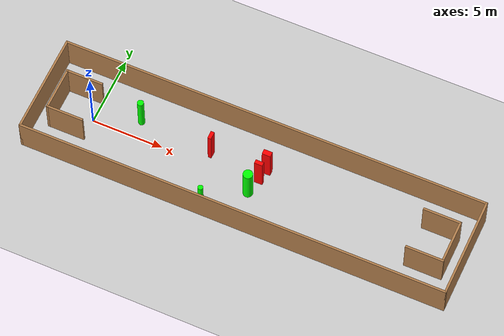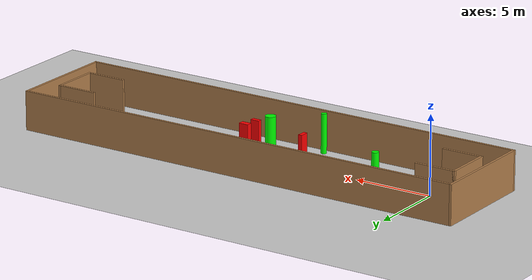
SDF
<sdf version="1.7">
 <world name="default">
  <light name="sun" type="directional">
   <pose>0 0 10 0 -0 0</pose>
   <diffuse>0.8 0.8 0.8 1</diffuse>
   <specular>0.2 0.2 0.2 1</specular>
   <attenuation>
    <range>1000</range>
    <constant>0.9</constant>
    <linear>0.01</linear>
    <quadratic>0.001</quadratic>
   </attenuation>
   <direction>-0.5 0.1 -0.9</direction>
   <spot><inner_angle>0</inner_angle><outer_angle>0</outer_angle><falloff>0</falloff></spot>
  </light>
  <model name="ground_plane">
   <static>1</static>
   <link name="link">
    <collision name="collision">
     <geometry><plane><normal>0 0 1</normal><size>100 100</size></plane></geometry>
     <surface>
      <contact><collide_bitmask>65535</collide_bitmask></contact>
      <friction><ode><mu>100</mu><mu2>50</mu2></ode></friction>
     </surface>
    </collision>
    <visual name="visual">
     <cast_shadows>0</cast_shadows>
     <geometry><plane><normal>0 0 1</normal><size>100 100</size></plane></geometry>
     <material>
      <script><uri>file://media/materials/scripts/gazebo.material</uri><name>Gazebo/Grey</name></script>
     </material>
    </visual>
   </link>
  </model>
  <gravity>0 0 -9.8</gravity>
  <magnetic_field>6e-06 2.3e-05 -4.2e-05</magnetic_field>
  <atmosphere type="adiabatic"/>
  <physics type="ode">
   <max_step_size>0.001</max_step_size>
   <real_time_factor>1</real_time_factor>
   <real_time_update_rate>1000</real_time_update_rate>
  </physics>
  <scene><ambient>0.4 0.4 0.4 1</ambient><background>0.7 0.7 0.7 1</background><shadows>1</shadows></scene>
  <spherical_coordinates>
   <surface_model>EARTH_WGS84</surface_model>
   <latitude_deg>0</latitude_deg>
   <longitude_deg>0</longitude_deg>
   <elevation>0</elevation>
   <heading_deg>0</heading_deg>
  </spherical_coordinates>
  <model name="my_base_walls">
   <link name="Wall_0">
    <collision name="Wall_0_Collision">
     <geometry><box><size>7.15 0.15 2.5</size></box></geometry>
     <pose>0 0 1.25 0 -0 0</pose>
    </collision>
    <visual name="Wall_0_Visual">
     <pose>0 0 1.25 0 -0 0</pose>
     <geometry><box><size>7.15 0.15 2.5</size></box></geometry>
     <material>
      <script><uri>file://media/materials/scripts/gazebo.material</uri><name>Gazebo/Wood</name></script>
      <ambient>1 1 1 1</ambient>
     </material>
     <meta><layer>0</layer></meta>
    </visual>
    <pose>-15 0 0 0 -0 1.5708</pose>
   </link>
   <link name="Wall_10">
    <collision name="Wall_10_Collision">
     <geometry><box><size>2.65 0.15 2.5</size></box></geometry>
     <pose>0 0 1.25 0 -0 0</pose>
    </collision>
    <visual name="Wall_10_Visual">
     <pose>0 0 1.25 0 -0 0</pose>
     <geometry><box><size>2.65 0.15 2.5</size></box></geometry>
     <material>
      <script><uri>file://media/materials/scripts/gazebo.material</uri><name>Gazebo/Wood</name></script>
      <ambient>1 1 1 1</ambient>
     </material>
     <meta><layer>0</layer></meta>
    </visual>
    <pose>-12.75 -1.5 0 0 -0 0</pose>
   </link>
   <link name="Wall_12">
    <collision name="Wall_12_Collision">
     <geometry><box><size>2.65 0.15 2.5</size></box></geometry>
     <pose>0 0 1.25 0 -0 0</pose>
    </collision>
    <visual name="Wall_12_Visual">
     <pose>0 0 1.25 0 -0 0</pose>
     <geometry><box><size>2.65 0.15 2.5</size></box></geometry>
     <material>
      <script><uri>file://media/materials/scripts/gazebo.material</uri><name>Gazebo/Wood</name></script>
      <ambient>1 1 1 1</ambient>
     </material>
     <meta><layer>0</layer></meta>
    </visual>
    <pose>-12.75 1.5 0 0 -0 0</pose>
   </link>
   <link name="Wall_14">
    <collision name="Wall_14_Collision">
     <geometry><box><size>3.15 0.15 2.5</size></box></geometry>
     <pose>0 0 1.25 0 -0 0</pose>
    </collision>
    <visual name="Wall_14_Visual">
     <pose>0 0 1.25 0 -0 0</pose>
     <geometry><box><size>3.15 0.15 2.5</size></box></geometry>
     <material>
      <script><uri>file://media/materials/scripts/gazebo.material</uri><name>Gazebo/Wood</name></script>
      <ambient>1 1 1 1</ambient>
     </material>
     <meta><layer>0</layer></meta>
    </visual>
    <pose>14 0 0 0 -0 -1.5708</pose>
   </link>
   <link name="Wall_15">
    <collision name="Wall_15_Collision">
     <geometry><box><size>2.65 0.15 2.5</size></box></geometry>
     <pose>0 0 1.25 0 -0 0</pose>
    </collision>
    <visual name="Wall_15_Visual">
     <pose>0 0 1.25 0 -0 0</pose>
     <geometry><box><size>2.65 0.15 2.5</size></box></geometry>
     <material>
      <script><uri>file://media/materials/scripts/gazebo.material</uri><name>Gazebo/Wood</name></script>
      <ambient>1 1 1 1</ambient>
     </material>
     <meta><layer>0</layer></meta>
    </visual>
    <pose>12.75 -1.5 0 0 -0 3.14159</pose>
   </link>
   <link name="Wall_17">
    <collision name="Wall_17_Collision">
     <geometry><box><size>2.65 0.15 2.5</size></box></geometry>
     <pose>0 0 1.25 0 -0 0</pose>
    </collision>
    <visual name="Wall_17_Visual">
     <pose>0 0 1.25 0 -0 0</pose>
     <geometry><box><size>2.65 0.15 2.5</size></box></geometry>
     <material>
      <script><uri>file://media/materials/scripts/gazebo.material</uri><name>Gazebo/Wood</name></script>
      <ambient>1 1 1 1</ambient>
     </material>
     <meta><layer>0</layer></meta>
    </visual>
    <pose>12.75 1.5 0 0 -0 3.14159</pose>
   </link>
   <link name="Wall_2">
    <collision name="Wall_2_Collision">
     <geometry><box><size>30.15 0.15 2.5</size></box></geometry>
     <pose>0 0 1.25 0 -0 0</pose>
    </collision>
    <visual name="Wall_2_Visual">
     <pose>0 0 1.25 0 -0 0</pose>
     <geometry><box><size>30.15 0.15 2.5</size></box></geometry>
     <material>
      <script><uri>file://media/materials/scripts/gazebo.material</uri><name>Gazebo/Wood</name></script>
      <ambient>1 1 1 1</ambient>
     </material>
     <meta><layer>0</layer></meta>
    </visual>
    <pose>-0 -3.5 0 0 -0 0</pose>
   </link>
   <link name="Wall_4">
    <collision name="Wall_4_Collision">
     <geometry><box><size>30.15 0.15 2.5</size></box></geometry>
     <pose>0 0 1.25 0 -0 0</pose>
    </collision>
    <visual name="Wall_4_Visual">
     <pose>0 0 1.25 0 -0 0</pose>
     <geometry><box><size>30.15 0.15 2.5</size></box></geometry>
     <material>
      <script><uri>file://media/materials/scripts/gazebo.material</uri><name>Gazebo/Wood</name></script>
      <ambient>1 1 1 1</ambient>
     </material>
     <meta><layer>0</layer></meta>
    </visual>
    <pose>-0 3.5 0 0 -0 0</pose>
   </link>
   <link name="Wall_6">
    <collision name="Wall_6_Collision">
     <geometry><box><size>7.15 0.15 2.5</size></box></geometry>
     <pose>0 0 1.25 0 -0 0</pose>
    </collision>
    <visual name="Wall_6_Visual">
     <pose>0 0 1.25 0 -0 0</pose>
     <geometry><box><size>7.15 0.15 2.5</size></box></geometry>
     <material>
      <script><uri>file://media/materials/scripts/gazebo.material</uri><name>Gazebo/Wood</name></script>
      <ambient>1 1 1 1</ambient>
     </material>
     <meta><layer>0</layer></meta>
    </visual>
    <pose>15 0 0 0 -0 -1.5708</pose>
   </link>
   <link name="Wall_9">
    <collision name="Wall_9_Collision">
     <geometry><box><size>3.15 0.15 2.5</size></box></geometry>
     <pose>0 0 1.25 0 -0 0</pose>
    </collision>
    <visual name="Wall_9_Visual">
     <pose>0 0 1.25 0 -0 0</pose>
     <geometry><box><size>3.15 0.15 2.5</size></box></geometry>
     <material>
      <script><uri>file://media/materials/scripts/gazebo.material</uri><name>Gazebo/Wood</name></script>
      <ambient>1 1 1 1</ambient>
     </material>
     <meta><layer>0</layer></meta>
    </visual>
    <pose>-14 0 0 0 -0 -1.5708</pose>
   </link>
   <static>1</static>
   <pose>11.5 0 0 0 -0 0</pose>
  </model>
  <model name="cylinder1">
   <static>1</static>
   <link name="link">
    <inertial>
     <mass>1</mass>
     <inertia><ixx>0.5</ixx><ixy>0</ixy><ixz>0</ixz><iyy>0.5</iyy><iyz>0</iyz><izz>1</izz></inertia>
    </inertial>
    <collision name="collision">
     <geometry><cylinder><radius>0.22409553761464157</radius><length>2.5</length></cylinder></geometry>
    </collision>
    <visual name="visual">
     <geometry><cylinder><radius>0.22409553761464157</radius><length>2.5</length></cylinder></geometry>
     <material>
      <ambient>0 1 0 1</ambient>
      <diffuse>0 1 0 1</diffuse>
      <specular>0.1 0.1 0.1 1</specular>
      <emissive>0 0 0 0</emissive>
     </material>
    </visual>
   </link>
   <pose>2.9713280882381135 1.2126221783581919 1.25 0 0 0</pose>
  </model>
  <model name="cylinder2">
   <static>1</static>
   <link name="link">
    <inertial>
     <mass>1</mass>
     <inertia><ixx>0.5</ixx><ixy>0</ixy><ixz>0</ixz><iyy>0.5</iyy><iyz>0</iyz><izz>1</izz></inertia>
    </inertial>
    <collision name="collision">
     <geometry><cylinder><radius>0.17960170250508553</radius><length>2.5</length></cylinder></geometry>
    </collision>
    <visual name="visual">
     <geometry><cylinder><radius>0.17960170250508553</radius><length>2.5</length></cylinder></geometry>
     <material>
      <ambient>0 1 0 1</ambient>
      <diffuse>0 1 0 1</diffuse>
      <specular>0.1 0.1 0.1 1</specular>
      <emissive>0 0 0 0</emissive>
     </material>
    </visual>
   </link>
   <pose>9.210604733798412 -2.955999753517963 1.25 0 0 0</pose>
  </model>
  <model name="cylinder3">
   <static>1</static>
   <link name="link">
    <inertial>
     <mass>1</mass>
     <inertia><ixx>0.5</ixx><ixy>0</ixy><ixz>0</ixz><iyy>0.5</iyy><iyz>0</iyz><izz>1</izz></inertia>
    </inertial>
    <collision name="collision">
     <geometry><cylinder><radius>0.33567544745470934</radius><length>2.5</length></cylinder></geometry>
    </collision>
    <visual name="visual">
     <geometry><cylinder><radius>0.33567544745470934</radius><length>2.5</length></cylinder></geometry>
     <material>
      <ambient>0 1 0 1</ambient>
      <diffuse>0 1 0 1</diffuse>
      <specular>0.1 0.1 0.1 1</specular>
      <emissive>0 0 0 0</emissive>
     </material>
    </visual>
   </link>
   <pose>11.604571592083518 -0.8078385316756496 1.25 0 0 0</pose>
  </model>
  <model name="box1">
   <static>1</static>
   <link name="link">
    <inertial>
     <mass>1</mass>
     <inertia><ixx>0.083</ixx><ixy>0</ixy><ixz>0</ixz><iyy>0.083</iyy><iyz>0</iyz><izz>0.083</izz></inertia>
    </inertial>
    <collision name="collision">
     <geometry><box><size>0.598883971519005 0.36530658500798036 2.5</size></box></geometry>
    </collision>
    <visual name="visual">
     <geometry><box><size>0.598883971519005 0.36530658500798036 2.5</size></box></geometry>
     <material>
      <ambient>1 0 0 1</ambient>
      <diffuse>1 0 0 1</diffuse>
      <specular>0.1 0.1 0.1 1</specular>
      <emissive>0 0 0 0</emissive>
     </material>
    </visual>
    <sensor name="my_contact" type="contact">
     <contact><collision>box_collision</collision><topic>__default_topic__</topic></contact>
    </sensor>
   </link>
   <pose>12.105605163567052 1.1450662866312014 1.25 0 0 0</pose>
  </model>
  <model name="box2">
   <static>1</static>
   <link name="link">
    <inertial>
     <mass>1</mass>
     <inertia><ixx>0.083</ixx><ixy>0</ixy><ixz>0</ixz><iyy>0.083</iyy><iyz>0</iyz><izz>0.083</izz></inertia>
    </inertial>
    <collision name="collision">
     <geometry><box><size>0.5665062447914441 0.2774447274967652 2.5</size></box></geometry>
    </collision>
    <visual name="visual">
     <geometry><box><size>0.5665062447914441 0.2774447274967652 2.5</size></box></geometry>
     <material>
      <ambient>1 0 0 1</ambient>
      <diffuse>1 0 0 1</diffuse>
      <specular>0.1 0.1 0.1 1</specular>
      <emissive>0 0 0 0</emissive>
     </material>
    </visual>
    <sensor name="my_contact" type="contact">
     <contact><collision>box_collision</collision><topic>__default_topic__</topic></contact>
    </sensor>
   </link>
   <pose>11.922190074975164 0.2621086148291467 1.25 0 0 0</pose>
  </model>
  <model name="box3">
   <static>1</static>
   <link name="link">
    <inertial>
     <mass>1</mass>
     <inertia><ixx>0.083</ixx><ixy>0</ixy><ixz>0</ixz><iyy>0.083</iyy><iyz>0</iyz><izz>0.083</izz></inertia>
    </inertial>
    <collision name="collision">
     <geometry><box><size>0.2463381278019151 0.557031564084894 2.5</size></box></geometry>
    </collision>
    <visual name="visual">
     <geometry><box><size>0.2463381278019151 0.557031564084894 2.5</size></box></geometry>
     <material>
      <ambient>1 0 0 1</ambient>
      <diffuse>1 0 0 1</diffuse>
      <specular>0.1 0.1 0.1 1</specular>
      <emissive>0 0 0 0</emissive>
     </material>
    </visual>
    <sensor name="my_contact" type="contact">
     <contact><collision>box_collision</collision><topic>__default_topic__</topic></contact>
    </sensor>
   </link>
   <pose>8.210855320502011 0.8717883419231471 1.25 0 0 0</pose>
  </model>
 </world>
</sdf>
